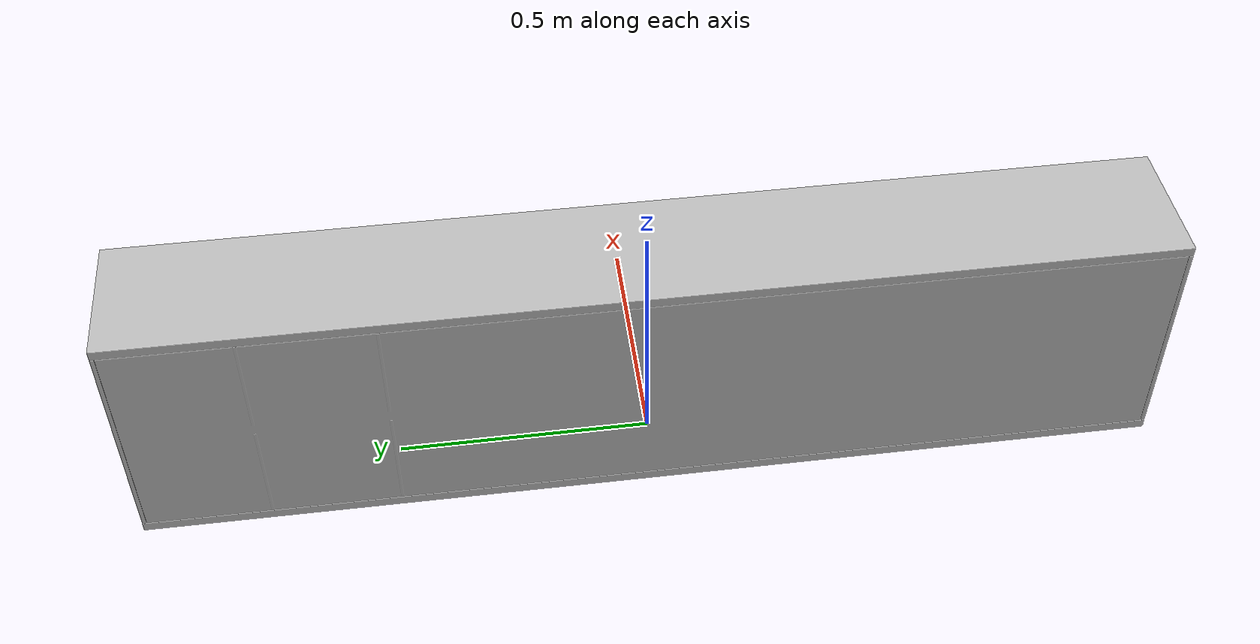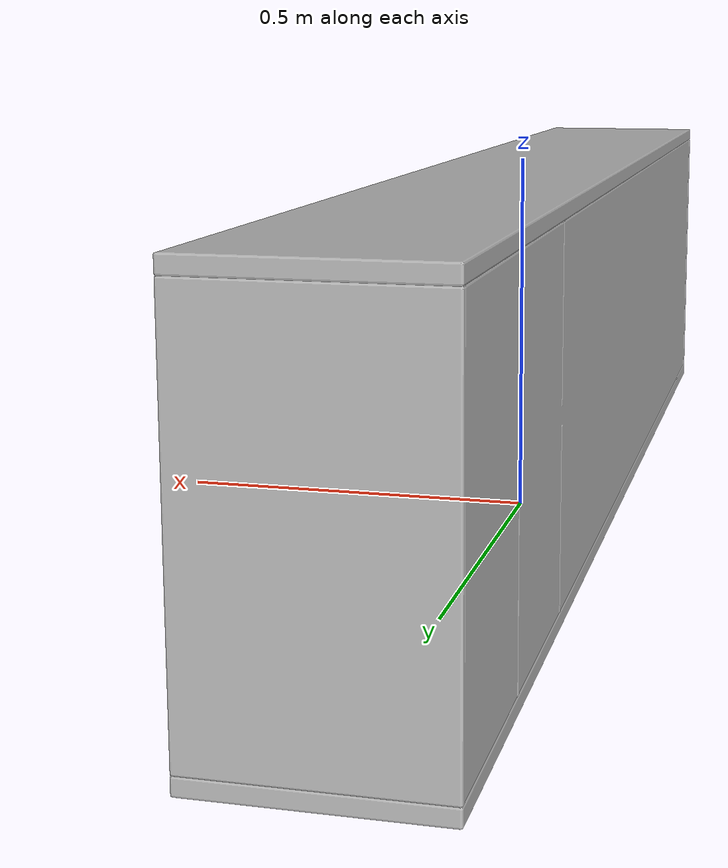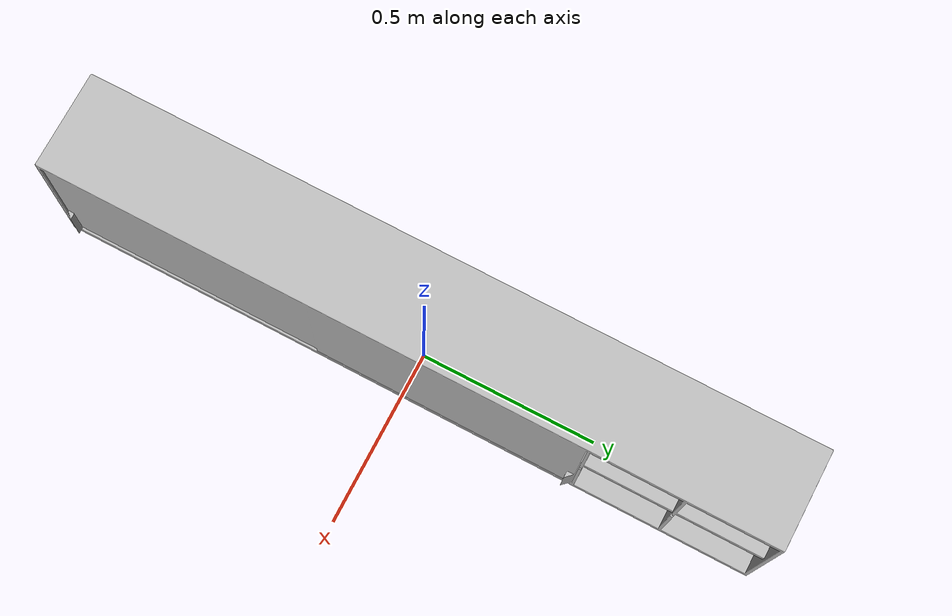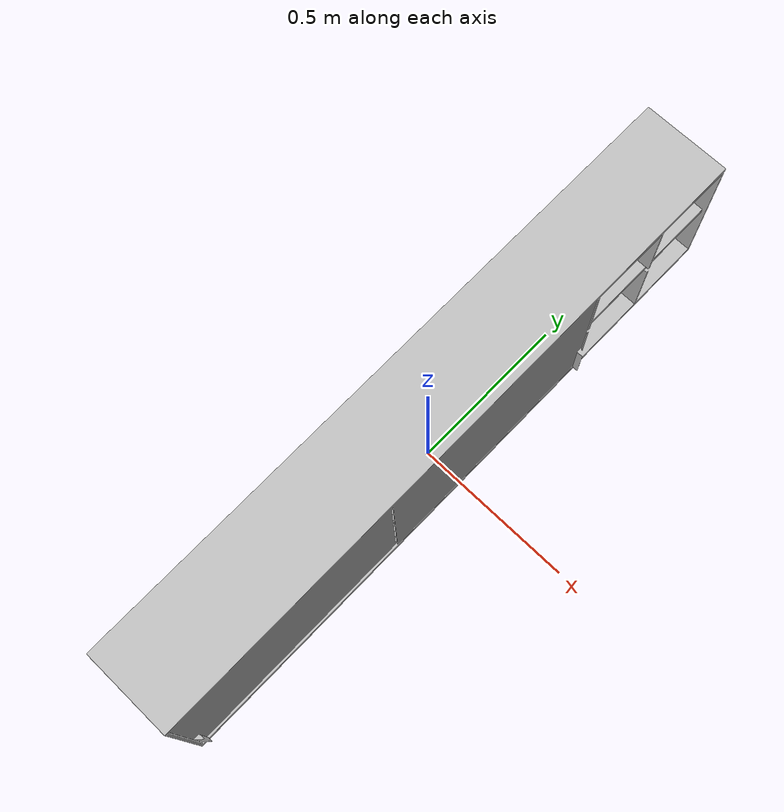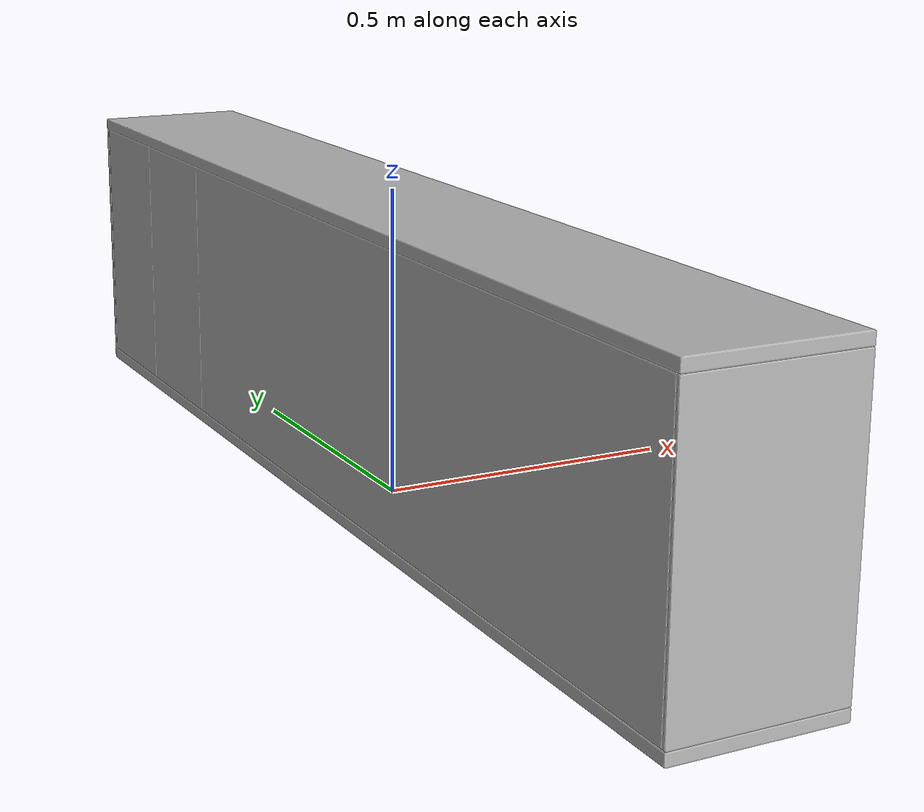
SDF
<?xml version='1.0'?>
<sdf version='1.4'>
  <model name='448'>
    <pose>0 0 0 0 0 0</pose>
    <static>true</static>
    <link name='link'>
      <collision name='collision'>
        <pose>0 0 0 0 0 0</pose>
        <geometry>
          <box>
            <size>0.28657 2 2</size>
          </box>
        </geometry>
      </collision>
      <visual name='visual'>
        <pose>0 0 0 0 0 0</pose>
        <geometry>
          <mesh><uri>model://448/448.dae</uri></mesh>
        </geometry>
      </visual>
    </link>
  </model>
</sdf>
